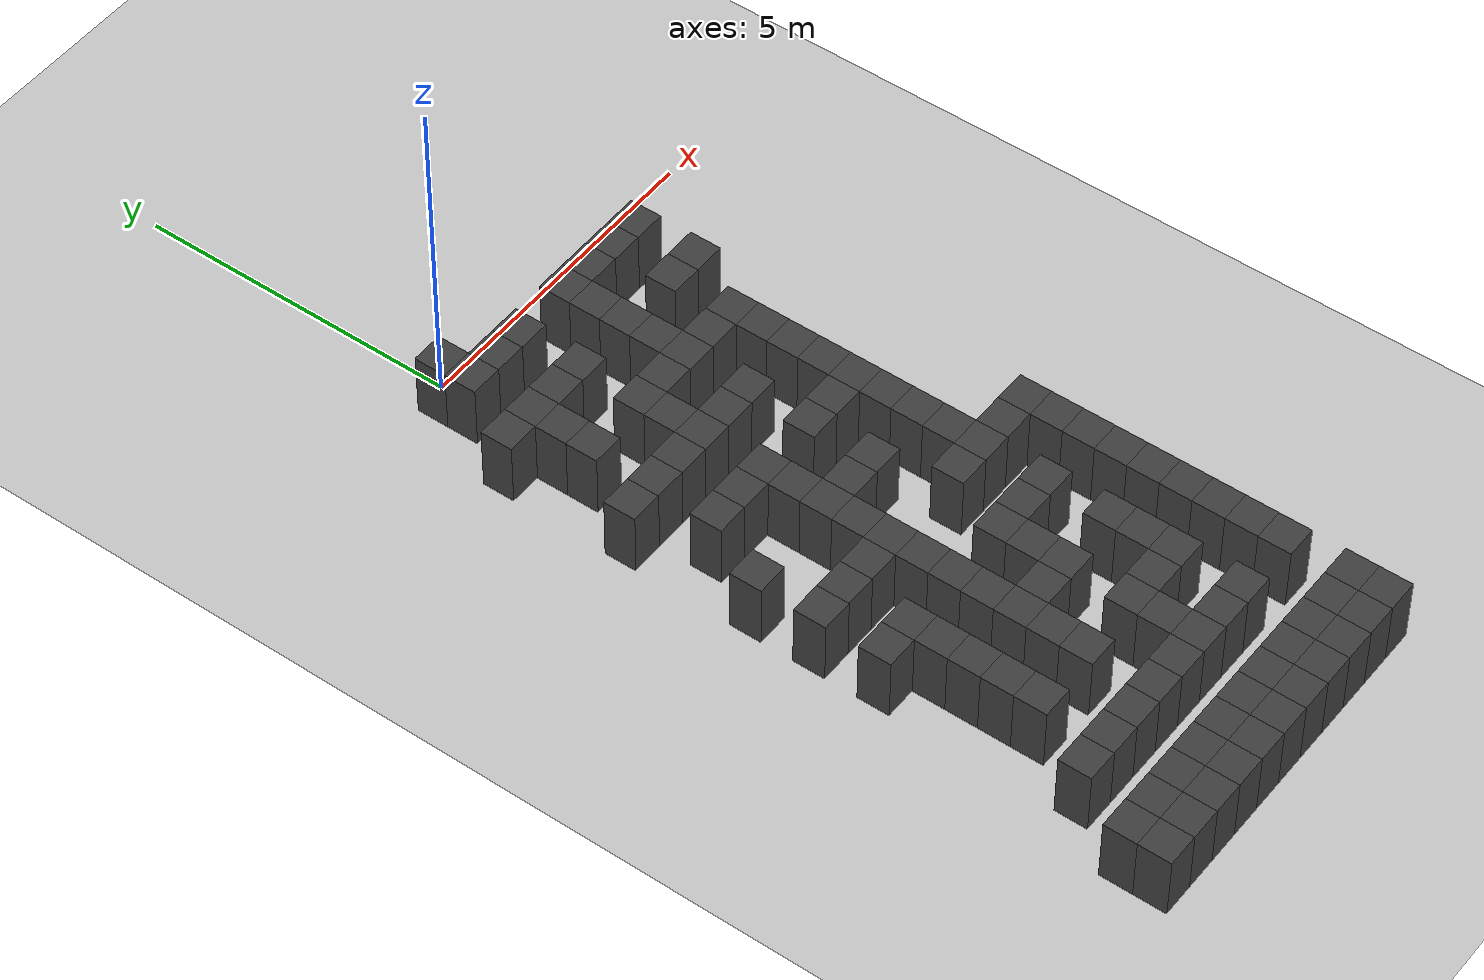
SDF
<sdf version="1.7">
 <world name="map_18914">
  <model name="ground_plane">
   <static>true</static>
   <link name="link">
    <collision name="collision">
     <geometry><plane><normal>0 0 1</normal><size>200 200</size></plane></geometry>
    </collision>
    <visual name="visual">
     <geometry><plane><normal>0 0 1</normal><size>200 200</size></plane></geometry>
     <material><ambient>0.8 0.8 0.8 1</ambient><diffuse>0.8 0.8 0.8 1</diffuse></material>
    </visual>
   </link>
  </model>
  <model name="maze_environment">
   <static>true</static>
   <link name="wall_658">
    <pose>-0.250 -0.250 0.500 0 0 0</pose>
    <collision name="col"><geometry><box><size>0.5 0.5 1.0</size></box></geometry></collision>
    <visual name="vis">
     <geometry><box><size>0.5 0.5 1.0</size></box></geometry>
     <material><ambient>0.15 0.15 0.15 1</ambient><diffuse>0.25 0.25 0.25 1</diffuse></material>
    </visual>
   </link>
   <link name="wall_683">
    <pose>-0.250 -0.750 0.500 0 0 0</pose>
    <collision name="col"><geometry><box><size>0.5 0.5 1.0</size></box></geometry></collision>
    <visual name="vis">
     <geometry><box><size>0.5 0.5 1.0</size></box></geometry>
     <material><ambient>0.15 0.15 0.15 1</ambient><diffuse>0.25 0.25 0.25 1</diffuse></material>
    </visual>
   </link>
   <link name="wall_684">
    <pose>0.250 -0.750 0.500 0 0 0</pose>
    <collision name="col"><geometry><box><size>0.5 0.5 1.0</size></box></geometry></collision>
    <visual name="vis">
     <geometry><box><size>0.5 0.5 1.0</size></box></geometry>
     <material><ambient>0.15 0.15 0.15 1</ambient><diffuse>0.25 0.25 0.25 1</diffuse></material>
    </visual>
   </link>
   <link name="wall_685">
    <pose>0.750 -0.750 0.500 0 0 0</pose>
    <collision name="col"><geometry><box><size>0.5 0.5 1.0</size></box></geometry></collision>
    <visual name="vis">
     <geometry><box><size>0.5 0.5 1.0</size></box></geometry>
     <material><ambient>0.15 0.15 0.15 1</ambient><diffuse>0.25 0.25 0.25 1</diffuse></material>
    </visual>
   </link>
   <link name="wall_686">
    <pose>1.750 -0.750 0.500 0 0 0</pose>
    <collision name="col"><geometry><box><size>0.5 0.5 1.0</size></box></geometry></collision>
    <visual name="vis">
     <geometry><box><size>0.5 0.5 1.0</size></box></geometry>
     <material><ambient>0.15 0.15 0.15 1</ambient><diffuse>0.25 0.25 0.25 1</diffuse></material>
    </visual>
   </link>
   <link name="wall_687">
    <pose>2.250 -0.750 0.500 0 0 0</pose>
    <collision name="col"><geometry><box><size>0.5 0.5 1.0</size></box></geometry></collision>
    <visual name="vis">
     <geometry><box><size>0.5 0.5 1.0</size></box></geometry>
     <material><ambient>0.15 0.15 0.15 1</ambient><diffuse>0.25 0.25 0.25 1</diffuse></material>
    </visual>
   </link>
   <link name="wall_688">
    <pose>2.750 -0.750 0.500 0 0 0</pose>
    <collision name="col"><geometry><box><size>0.5 0.5 1.0</size></box></geometry></collision>
    <visual name="vis">
     <geometry><box><size>0.5 0.5 1.0</size></box></geometry>
     <material><ambient>0.15 0.15 0.15 1</ambient><diffuse>0.25 0.25 0.25 1</diffuse></material>
    </visual>
   </link>
   <link name="wall_689">
    <pose>3.250 -0.750 0.500 0 0 0</pose>
    <collision name="col"><geometry><box><size>0.5 0.5 1.0</size></box></geometry></collision>
    <visual name="vis">
     <geometry><box><size>0.5 0.5 1.0</size></box></geometry>
     <material><ambient>0.15 0.15 0.15 1</ambient><diffuse>0.25 0.25 0.25 1</diffuse></material>
    </visual>
   </link>
   <link name="wall_709">
    <pose>1.750 -1.250 0.500 0 0 0</pose>
    <collision name="col"><geometry><box><size>0.5 0.5 1.0</size></box></geometry></collision>
    <visual name="vis">
     <geometry><box><size>0.5 0.5 1.0</size></box></geometry>
     <material><ambient>0.15 0.15 0.15 1</ambient><diffuse>0.25 0.25 0.25 1</diffuse></material>
    </visual>
   </link>
   <link name="wall_732">
    <pose>-0.750 -1.750 0.500 0 0 0</pose>
    <collision name="col"><geometry><box><size>0.5 0.5 1.0</size></box></geometry></collision>
    <visual name="vis">
     <geometry><box><size>0.5 0.5 1.0</size></box></geometry>
     <material><ambient>0.15 0.15 0.15 1</ambient><diffuse>0.25 0.25 0.25 1</diffuse></material>
    </visual>
   </link>
   <link name="wall_733">
    <pose>-0.250 -1.750 0.500 0 0 0</pose>
    <collision name="col"><geometry><box><size>0.5 0.5 1.0</size></box></geometry></collision>
    <visual name="vis">
     <geometry><box><size>0.5 0.5 1.0</size></box></geometry>
     <material><ambient>0.15 0.15 0.15 1</ambient><diffuse>0.25 0.25 0.25 1</diffuse></material>
    </visual>
   </link>
   <link name="wall_734">
    <pose>0.250 -1.750 0.500 0 0 0</pose>
    <collision name="col"><geometry><box><size>0.5 0.5 1.0</size></box></geometry></collision>
    <visual name="vis">
     <geometry><box><size>0.5 0.5 1.0</size></box></geometry>
     <material><ambient>0.15 0.15 0.15 1</ambient><diffuse>0.25 0.25 0.25 1</diffuse></material>
    </visual>
   </link>
   <link name="wall_735">
    <pose>0.750 -1.750 0.500 0 0 0</pose>
    <collision name="col"><geometry><box><size>0.5 0.5 1.0</size></box></geometry></collision>
    <visual name="vis">
     <geometry><box><size>0.5 0.5 1.0</size></box></geometry>
     <material><ambient>0.15 0.15 0.15 1</ambient><diffuse>0.25 0.25 0.25 1</diffuse></material>
    </visual>
   </link>
   <link name="wall_736">
    <pose>1.750 -1.750 0.500 0 0 0</pose>
    <collision name="col"><geometry><box><size>0.5 0.5 1.0</size></box></geometry></collision>
    <visual name="vis">
     <geometry><box><size>0.5 0.5 1.0</size></box></geometry>
     <material><ambient>0.15 0.15 0.15 1</ambient><diffuse>0.25 0.25 0.25 1</diffuse></material>
    </visual>
   </link>
   <link name="wall_737">
    <pose>2.750 -1.750 0.500 0 0 0</pose>
    <collision name="col"><geometry><box><size>0.5 0.5 1.0</size></box></geometry></collision>
    <visual name="vis">
     <geometry><box><size>0.5 0.5 1.0</size></box></geometry>
     <material><ambient>0.15 0.15 0.15 1</ambient><diffuse>0.25 0.25 0.25 1</diffuse></material>
    </visual>
   </link>
   <link name="wall_738">
    <pose>3.250 -1.750 0.500 0 0 0</pose>
    <collision name="col"><geometry><box><size>0.5 0.5 1.0</size></box></geometry></collision>
    <visual name="vis">
     <geometry><box><size>0.5 0.5 1.0</size></box></geometry>
     <material><ambient>0.15 0.15 0.15 1</ambient><diffuse>0.25 0.25 0.25 1</diffuse></material>
    </visual>
   </link>
   <link name="wall_760">
    <pose>-0.250 -2.250 0.500 0 0 0</pose>
    <collision name="col"><geometry><box><size>0.5 0.5 1.0</size></box></geometry></collision>
    <visual name="vis">
     <geometry><box><size>0.5 0.5 1.0</size></box></geometry>
     <material><ambient>0.15 0.15 0.15 1</ambient><diffuse>0.25 0.25 0.25 1</diffuse></material>
    </visual>
   </link>
   <link name="wall_761">
    <pose>1.750 -2.250 0.500 0 0 0</pose>
    <collision name="col"><geometry><box><size>0.5 0.5 1.0</size></box></geometry></collision>
    <visual name="vis">
     <geometry><box><size>0.5 0.5 1.0</size></box></geometry>
     <material><ambient>0.15 0.15 0.15 1</ambient><diffuse>0.25 0.25 0.25 1</diffuse></material>
    </visual>
   </link>
   <link name="wall_783">
    <pose>-0.250 -2.750 0.500 0 0 0</pose>
    <collision name="col"><geometry><box><size>0.5 0.5 1.0</size></box></geometry></collision>
    <visual name="vis">
     <geometry><box><size>0.5 0.5 1.0</size></box></geometry>
     <material><ambient>0.15 0.15 0.15 1</ambient><diffuse>0.25 0.25 0.25 1</diffuse></material>
    </visual>
   </link>
   <link name="wall_784">
    <pose>0.750 -2.750 0.500 0 0 0</pose>
    <collision name="col"><geometry><box><size>0.5 0.5 1.0</size></box></geometry></collision>
    <visual name="vis">
     <geometry><box><size>0.5 0.5 1.0</size></box></geometry>
     <material><ambient>0.15 0.15 0.15 1</ambient><diffuse>0.25 0.25 0.25 1</diffuse></material>
    </visual>
   </link>
   <link name="wall_785">
    <pose>1.250 -2.750 0.500 0 0 0</pose>
    <collision name="col"><geometry><box><size>0.5 0.5 1.0</size></box></geometry></collision>
    <visual name="vis">
     <geometry><box><size>0.5 0.5 1.0</size></box></geometry>
     <material><ambient>0.15 0.15 0.15 1</ambient><diffuse>0.25 0.25 0.25 1</diffuse></material>
    </visual>
   </link>
   <link name="wall_786">
    <pose>1.750 -2.750 0.500 0 0 0</pose>
    <collision name="col"><geometry><box><size>0.5 0.5 1.0</size></box></geometry></collision>
    <visual name="vis">
     <geometry><box><size>0.5 0.5 1.0</size></box></geometry>
     <material><ambient>0.15 0.15 0.15 1</ambient><diffuse>0.25 0.25 0.25 1</diffuse></material>
    </visual>
   </link>
   <link name="wall_787">
    <pose>2.250 -2.750 0.500 0 0 0</pose>
    <collision name="col"><geometry><box><size>0.5 0.5 1.0</size></box></geometry></collision>
    <visual name="vis">
     <geometry><box><size>0.5 0.5 1.0</size></box></geometry>
     <material><ambient>0.15 0.15 0.15 1</ambient><diffuse>0.25 0.25 0.25 1</diffuse></material>
    </visual>
   </link>
   <link name="wall_788">
    <pose>2.750 -2.750 0.500 0 0 0</pose>
    <collision name="col"><geometry><box><size>0.5 0.5 1.0</size></box></geometry></collision>
    <visual name="vis">
     <geometry><box><size>0.5 0.5 1.0</size></box></geometry>
     <material><ambient>0.15 0.15 0.15 1</ambient><diffuse>0.25 0.25 0.25 1</diffuse></material>
    </visual>
   </link>
   <link name="wall_812">
    <pose>0.750 -3.250 0.500 0 0 0</pose>
    <collision name="col"><geometry><box><size>0.5 0.5 1.0</size></box></geometry></collision>
    <visual name="vis">
     <geometry><box><size>0.5 0.5 1.0</size></box></geometry>
     <material><ambient>0.15 0.15 0.15 1</ambient><diffuse>0.25 0.25 0.25 1</diffuse></material>
    </visual>
   </link>
   <link name="wall_813">
    <pose>2.750 -3.250 0.500 0 0 0</pose>
    <collision name="col"><geometry><box><size>0.5 0.5 1.0</size></box></geometry></collision>
    <visual name="vis">
     <geometry><box><size>0.5 0.5 1.0</size></box></geometry>
     <material><ambient>0.15 0.15 0.15 1</ambient><diffuse>0.25 0.25 0.25 1</diffuse></material>
    </visual>
   </link>
   <link name="wall_834">
    <pose>-0.750 -3.750 0.500 0 0 0</pose>
    <collision name="col"><geometry><box><size>0.5 0.5 1.0</size></box></geometry></collision>
    <visual name="vis">
     <geometry><box><size>0.5 0.5 1.0</size></box></geometry>
     <material><ambient>0.15 0.15 0.15 1</ambient><diffuse>0.25 0.25 0.25 1</diffuse></material>
    </visual>
   </link>
   <link name="wall_835">
    <pose>-0.250 -3.750 0.500 0 0 0</pose>
    <collision name="col"><geometry><box><size>0.5 0.5 1.0</size></box></geometry></collision>
    <visual name="vis">
     <geometry><box><size>0.5 0.5 1.0</size></box></geometry>
     <material><ambient>0.15 0.15 0.15 1</ambient><diffuse>0.25 0.25 0.25 1</diffuse></material>
    </visual>
   </link>
   <link name="wall_836">
    <pose>0.250 -3.750 0.500 0 0 0</pose>
    <collision name="col"><geometry><box><size>0.5 0.5 1.0</size></box></geometry></collision>
    <visual name="vis">
     <geometry><box><size>0.5 0.5 1.0</size></box></geometry>
     <material><ambient>0.15 0.15 0.15 1</ambient><diffuse>0.25 0.25 0.25 1</diffuse></material>
    </visual>
   </link>
   <link name="wall_837">
    <pose>0.750 -3.750 0.500 0 0 0</pose>
    <collision name="col"><geometry><box><size>0.5 0.5 1.0</size></box></geometry></collision>
    <visual name="vis">
     <geometry><box><size>0.5 0.5 1.0</size></box></geometry>
     <material><ambient>0.15 0.15 0.15 1</ambient><diffuse>0.25 0.25 0.25 1</diffuse></material>
    </visual>
   </link>
   <link name="wall_838">
    <pose>1.250 -3.750 0.500 0 0 0</pose>
    <collision name="col"><geometry><box><size>0.5 0.5 1.0</size></box></geometry></collision>
    <visual name="vis">
     <geometry><box><size>0.5 0.5 1.0</size></box></geometry>
     <material><ambient>0.15 0.15 0.15 1</ambient><diffuse>0.25 0.25 0.25 1</diffuse></material>
    </visual>
   </link>
   <link name="wall_839">
    <pose>1.750 -3.750 0.500 0 0 0</pose>
    <collision name="col"><geometry><box><size>0.5 0.5 1.0</size></box></geometry></collision>
    <visual name="vis">
     <geometry><box><size>0.5 0.5 1.0</size></box></geometry>
     <material><ambient>0.15 0.15 0.15 1</ambient><diffuse>0.25 0.25 0.25 1</diffuse></material>
    </visual>
   </link>
   <link name="wall_840">
    <pose>2.750 -3.750 0.500 0 0 0</pose>
    <collision name="col"><geometry><box><size>0.5 0.5 1.0</size></box></geometry></collision>
    <visual name="vis">
     <geometry><box><size>0.5 0.5 1.0</size></box></geometry>
     <material><ambient>0.15 0.15 0.15 1</ambient><diffuse>0.25 0.25 0.25 1</diffuse></material>
    </visual>
   </link>
   <link name="wall_864">
    <pose>2.750 -4.250 0.500 0 0 0</pose>
    <collision name="col"><geometry><box><size>0.5 0.5 1.0</size></box></geometry></collision>
    <visual name="vis">
     <geometry><box><size>0.5 0.5 1.0</size></box></geometry>
     <material><ambient>0.15 0.15 0.15 1</ambient><diffuse>0.25 0.25 0.25 1</diffuse></material>
    </visual>
   </link>
   <link name="wall_884">
    <pose>-0.250 -4.750 0.500 0 0 0</pose>
    <collision name="col"><geometry><box><size>0.5 0.5 1.0</size></box></geometry></collision>
    <visual name="vis">
     <geometry><box><size>0.5 0.5 1.0</size></box></geometry>
     <material><ambient>0.15 0.15 0.15 1</ambient><diffuse>0.25 0.25 0.25 1</diffuse></material>
    </visual>
   </link>
   <link name="wall_885">
    <pose>0.250 -4.750 0.500 0 0 0</pose>
    <collision name="col"><geometry><box><size>0.5 0.5 1.0</size></box></geometry></collision>
    <visual name="vis">
     <geometry><box><size>0.5 0.5 1.0</size></box></geometry>
     <material><ambient>0.15 0.15 0.15 1</ambient><diffuse>0.25 0.25 0.25 1</diffuse></material>
    </visual>
   </link>
   <link name="wall_886">
    <pose>0.750 -4.750 0.500 0 0 0</pose>
    <collision name="col"><geometry><box><size>0.5 0.5 1.0</size></box></geometry></collision>
    <visual name="vis">
     <geometry><box><size>0.5 0.5 1.0</size></box></geometry>
     <material><ambient>0.15 0.15 0.15 1</ambient><diffuse>0.25 0.25 0.25 1</diffuse></material>
    </visual>
   </link>
   <link name="wall_887">
    <pose>1.750 -4.750 0.500 0 0 0</pose>
    <collision name="col"><geometry><box><size>0.5 0.5 1.0</size></box></geometry></collision>
    <visual name="vis">
     <geometry><box><size>0.5 0.5 1.0</size></box></geometry>
     <material><ambient>0.15 0.15 0.15 1</ambient><diffuse>0.25 0.25 0.25 1</diffuse></material>
    </visual>
   </link>
   <link name="wall_888">
    <pose>2.250 -4.750 0.500 0 0 0</pose>
    <collision name="col"><geometry><box><size>0.5 0.5 1.0</size></box></geometry></collision>
    <visual name="vis">
     <geometry><box><size>0.5 0.5 1.0</size></box></geometry>
     <material><ambient>0.15 0.15 0.15 1</ambient><diffuse>0.25 0.25 0.25 1</diffuse></material>
    </visual>
   </link>
   <link name="wall_889">
    <pose>2.750 -4.750 0.500 0 0 0</pose>
    <collision name="col"><geometry><box><size>0.5 0.5 1.0</size></box></geometry></collision>
    <visual name="vis">
     <geometry><box><size>0.5 0.5 1.0</size></box></geometry>
     <material><ambient>0.15 0.15 0.15 1</ambient><diffuse>0.25 0.25 0.25 1</diffuse></material>
    </visual>
   </link>
   <link name="wall_911">
    <pose>0.750 -5.250 0.500 0 0 0</pose>
    <collision name="col"><geometry><box><size>0.5 0.5 1.0</size></box></geometry></collision>
    <visual name="vis">
     <geometry><box><size>0.5 0.5 1.0</size></box></geometry>
     <material><ambient>0.15 0.15 0.15 1</ambient><diffuse>0.25 0.25 0.25 1</diffuse></material>
    </visual>
   </link>
   <link name="wall_912">
    <pose>2.750 -5.250 0.500 0 0 0</pose>
    <collision name="col"><geometry><box><size>0.5 0.5 1.0</size></box></geometry></collision>
    <visual name="vis">
     <geometry><box><size>0.5 0.5 1.0</size></box></geometry>
     <material><ambient>0.15 0.15 0.15 1</ambient><diffuse>0.25 0.25 0.25 1</diffuse></material>
    </visual>
   </link>
   <link name="wall_934">
    <pose>-0.750 -5.750 0.500 0 0 0</pose>
    <collision name="col"><geometry><box><size>0.5 0.5 1.0</size></box></geometry></collision>
    <visual name="vis">
     <geometry><box><size>0.5 0.5 1.0</size></box></geometry>
     <material><ambient>0.15 0.15 0.15 1</ambient><diffuse>0.25 0.25 0.25 1</diffuse></material>
    </visual>
   </link>
   <link name="wall_935">
    <pose>0.750 -5.750 0.500 0 0 0</pose>
    <collision name="col"><geometry><box><size>0.5 0.5 1.0</size></box></geometry></collision>
    <visual name="vis">
     <geometry><box><size>0.5 0.5 1.0</size></box></geometry>
     <material><ambient>0.15 0.15 0.15 1</ambient><diffuse>0.25 0.25 0.25 1</diffuse></material>
    </visual>
   </link>
   <link name="wall_936">
    <pose>1.250 -5.750 0.500 0 0 0</pose>
    <collision name="col"><geometry><box><size>0.5 0.5 1.0</size></box></geometry></collision>
    <visual name="vis">
     <geometry><box><size>0.5 0.5 1.0</size></box></geometry>
     <material><ambient>0.15 0.15 0.15 1</ambient><diffuse>0.25 0.25 0.25 1</diffuse></material>
    </visual>
   </link>
   <link name="wall_937">
    <pose>1.750 -5.750 0.500 0 0 0</pose>
    <collision name="col"><geometry><box><size>0.5 0.5 1.0</size></box></geometry></collision>
    <visual name="vis">
     <geometry><box><size>0.5 0.5 1.0</size></box></geometry>
     <material><ambient>0.15 0.15 0.15 1</ambient><diffuse>0.25 0.25 0.25 1</diffuse></material>
    </visual>
   </link>
   <link name="wall_938">
    <pose>2.750 -5.750 0.500 0 0 0</pose>
    <collision name="col"><geometry><box><size>0.5 0.5 1.0</size></box></geometry></collision>
    <visual name="vis">
     <geometry><box><size>0.5 0.5 1.0</size></box></geometry>
     <material><ambient>0.15 0.15 0.15 1</ambient><diffuse>0.25 0.25 0.25 1</diffuse></material>
    </visual>
   </link>
   <link name="wall_958">
    <pose>0.750 -6.250 0.500 0 0 0</pose>
    <collision name="col"><geometry><box><size>0.5 0.5 1.0</size></box></geometry></collision>
    <visual name="vis">
     <geometry><box><size>0.5 0.5 1.0</size></box></geometry>
     <material><ambient>0.15 0.15 0.15 1</ambient><diffuse>0.25 0.25 0.25 1</diffuse></material>
    </visual>
   </link>
   <link name="wall_959">
    <pose>2.750 -6.250 0.500 0 0 0</pose>
    <collision name="col"><geometry><box><size>0.5 0.5 1.0</size></box></geometry></collision>
    <visual name="vis">
     <geometry><box><size>0.5 0.5 1.0</size></box></geometry>
     <material><ambient>0.15 0.15 0.15 1</ambient><diffuse>0.25 0.25 0.25 1</diffuse></material>
    </visual>
   </link>
   <link name="wall_982">
    <pose>-0.750 -6.750 0.500 0 0 0</pose>
    <collision name="col"><geometry><box><size>0.5 0.5 1.0</size></box></geometry></collision>
    <visual name="vis">
     <geometry><box><size>0.5 0.5 1.0</size></box></geometry>
     <material><ambient>0.15 0.15 0.15 1</ambient><diffuse>0.25 0.25 0.25 1</diffuse></material>
    </visual>
   </link>
   <link name="wall_983">
    <pose>-0.250 -6.750 0.500 0 0 0</pose>
    <collision name="col"><geometry><box><size>0.5 0.5 1.0</size></box></geometry></collision>
    <visual name="vis">
     <geometry><box><size>0.5 0.5 1.0</size></box></geometry>
     <material><ambient>0.15 0.15 0.15 1</ambient><diffuse>0.25 0.25 0.25 1</diffuse></material>
    </visual>
   </link>
   <link name="wall_984">
    <pose>0.250 -6.750 0.500 0 0 0</pose>
    <collision name="col"><geometry><box><size>0.5 0.5 1.0</size></box></geometry></collision>
    <visual name="vis">
     <geometry><box><size>0.5 0.5 1.0</size></box></geometry>
     <material><ambient>0.15 0.15 0.15 1</ambient><diffuse>0.25 0.25 0.25 1</diffuse></material>
    </visual>
   </link>
   <link name="wall_985">
    <pose>0.750 -6.750 0.500 0 0 0</pose>
    <collision name="col"><geometry><box><size>0.5 0.5 1.0</size></box></geometry></collision>
    <visual name="vis">
     <geometry><box><size>0.5 0.5 1.0</size></box></geometry>
     <material><ambient>0.15 0.15 0.15 1</ambient><diffuse>0.25 0.25 0.25 1</diffuse></material>
    </visual>
   </link>
   <link name="wall_986">
    <pose>2.250 -6.750 0.500 0 0 0</pose>
    <collision name="col"><geometry><box><size>0.5 0.5 1.0</size></box></geometry></collision>
    <visual name="vis">
     <geometry><box><size>0.5 0.5 1.0</size></box></geometry>
     <material><ambient>0.15 0.15 0.15 1</ambient><diffuse>0.25 0.25 0.25 1</diffuse></material>
    </visual>
   </link>
   <link name="wall_987">
    <pose>2.750 -6.750 0.500 0 0 0</pose>
    <collision name="col"><geometry><box><size>0.5 0.5 1.0</size></box></geometry></collision>
    <visual name="vis">
     <geometry><box><size>0.5 0.5 1.0</size></box></geometry>
     <material><ambient>0.15 0.15 0.15 1</ambient><diffuse>0.25 0.25 0.25 1</diffuse></material>
    </visual>
   </link>
   <link name="wall_988">
    <pose>3.250 -6.750 0.500 0 0 0</pose>
    <collision name="col"><geometry><box><size>0.5 0.5 1.0</size></box></geometry></collision>
    <visual name="vis">
     <geometry><box><size>0.5 0.5 1.0</size></box></geometry>
     <material><ambient>0.15 0.15 0.15 1</ambient><diffuse>0.25 0.25 0.25 1</diffuse></material>
    </visual>
   </link>
   <link name="wall_989">
    <pose>3.750 -6.750 0.500 0 0 0</pose>
    <collision name="col"><geometry><box><size>0.5 0.5 1.0</size></box></geometry></collision>
    <visual name="vis">
     <geometry><box><size>0.5 0.5 1.0</size></box></geometry>
     <material><ambient>0.15 0.15 0.15 1</ambient><diffuse>0.25 0.25 0.25 1</diffuse></material>
    </visual>
   </link>
   <link name="wall_1008">
    <pose>0.750 -7.250 0.500 0 0 0</pose>
    <collision name="col"><geometry><box><size>0.5 0.5 1.0</size></box></geometry></collision>
    <visual name="vis">
     <geometry><box><size>0.5 0.5 1.0</size></box></geometry>
     <material><ambient>0.15 0.15 0.15 1</ambient><diffuse>0.25 0.25 0.25 1</diffuse></material>
    </visual>
   </link>
   <link name="wall_1009">
    <pose>3.750 -7.250 0.500 0 0 0</pose>
    <collision name="col"><geometry><box><size>0.5 0.5 1.0</size></box></geometry></collision>
    <visual name="vis">
     <geometry><box><size>0.5 0.5 1.0</size></box></geometry>
     <material><ambient>0.15 0.15 0.15 1</ambient><diffuse>0.25 0.25 0.25 1</diffuse></material>
    </visual>
   </link>
   <link name="wall_1032">
    <pose>-0.750 -7.750 0.500 0 0 0</pose>
    <collision name="col"><geometry><box><size>0.5 0.5 1.0</size></box></geometry></collision>
    <visual name="vis">
     <geometry><box><size>0.5 0.5 1.0</size></box></geometry>
     <material><ambient>0.15 0.15 0.15 1</ambient><diffuse>0.25 0.25 0.25 1</diffuse></material>
    </visual>
   </link>
   <link name="wall_1033">
    <pose>-0.250 -7.750 0.500 0 0 0</pose>
    <collision name="col"><geometry><box><size>0.5 0.5 1.0</size></box></geometry></collision>
    <visual name="vis">
     <geometry><box><size>0.5 0.5 1.0</size></box></geometry>
     <material><ambient>0.15 0.15 0.15 1</ambient><diffuse>0.25 0.25 0.25 1</diffuse></material>
    </visual>
   </link>
   <link name="wall_1034">
    <pose>0.750 -7.750 0.500 0 0 0</pose>
    <collision name="col"><geometry><box><size>0.5 0.5 1.0</size></box></geometry></collision>
    <visual name="vis">
     <geometry><box><size>0.5 0.5 1.0</size></box></geometry>
     <material><ambient>0.15 0.15 0.15 1</ambient><diffuse>0.25 0.25 0.25 1</diffuse></material>
    </visual>
   </link>
   <link name="wall_1035">
    <pose>1.750 -7.750 0.500 0 0 0</pose>
    <collision name="col"><geometry><box><size>0.5 0.5 1.0</size></box></geometry></collision>
    <visual name="vis">
     <geometry><box><size>0.5 0.5 1.0</size></box></geometry>
     <material><ambient>0.15 0.15 0.15 1</ambient><diffuse>0.25 0.25 0.25 1</diffuse></material>
    </visual>
   </link>
   <link name="wall_1036">
    <pose>2.250 -7.750 0.500 0 0 0</pose>
    <collision name="col"><geometry><box><size>0.5 0.5 1.0</size></box></geometry></collision>
    <visual name="vis">
     <geometry><box><size>0.5 0.5 1.0</size></box></geometry>
     <material><ambient>0.15 0.15 0.15 1</ambient><diffuse>0.25 0.25 0.25 1</diffuse></material>
    </visual>
   </link>
   <link name="wall_1037">
    <pose>2.750 -7.750 0.500 0 0 0</pose>
    <collision name="col"><geometry><box><size>0.5 0.5 1.0</size></box></geometry></collision>
    <visual name="vis">
     <geometry><box><size>0.5 0.5 1.0</size></box></geometry>
     <material><ambient>0.15 0.15 0.15 1</ambient><diffuse>0.25 0.25 0.25 1</diffuse></material>
    </visual>
   </link>
   <link name="wall_1038">
    <pose>3.750 -7.750 0.500 0 0 0</pose>
    <collision name="col"><geometry><box><size>0.5 0.5 1.0</size></box></geometry></collision>
    <visual name="vis">
     <geometry><box><size>0.5 0.5 1.0</size></box></geometry>
     <material><ambient>0.15 0.15 0.15 1</ambient><diffuse>0.25 0.25 0.25 1</diffuse></material>
    </visual>
   </link>
   <link name="wall_1058">
    <pose>-0.250 -8.250 0.500 0 0 0</pose>
    <collision name="col"><geometry><box><size>0.5 0.5 1.0</size></box></geometry></collision>
    <visual name="vis">
     <geometry><box><size>0.5 0.5 1.0</size></box></geometry>
     <material><ambient>0.15 0.15 0.15 1</ambient><diffuse>0.25 0.25 0.25 1</diffuse></material>
    </visual>
   </link>
   <link name="wall_1059">
    <pose>0.750 -8.250 0.500 0 0 0</pose>
    <collision name="col"><geometry><box><size>0.5 0.5 1.0</size></box></geometry></collision>
    <visual name="vis">
     <geometry><box><size>0.5 0.5 1.0</size></box></geometry>
     <material><ambient>0.15 0.15 0.15 1</ambient><diffuse>0.25 0.25 0.25 1</diffuse></material>
    </visual>
   </link>
   <link name="wall_1060">
    <pose>1.750 -8.250 0.500 0 0 0</pose>
    <collision name="col"><geometry><box><size>0.5 0.5 1.0</size></box></geometry></collision>
    <visual name="vis">
     <geometry><box><size>0.5 0.5 1.0</size></box></geometry>
     <material><ambient>0.15 0.15 0.15 1</ambient><diffuse>0.25 0.25 0.25 1</diffuse></material>
    </visual>
   </link>
   <link name="wall_1061">
    <pose>3.750 -8.250 0.500 0 0 0</pose>
    <collision name="col"><geometry><box><size>0.5 0.5 1.0</size></box></geometry></collision>
    <visual name="vis">
     <geometry><box><size>0.5 0.5 1.0</size></box></geometry>
     <material><ambient>0.15 0.15 0.15 1</ambient><diffuse>0.25 0.25 0.25 1</diffuse></material>
    </visual>
   </link>
   <link name="wall_1084">
    <pose>-0.250 -8.750 0.500 0 0 0</pose>
    <collision name="col"><geometry><box><size>0.5 0.5 1.0</size></box></geometry></collision>
    <visual name="vis">
     <geometry><box><size>0.5 0.5 1.0</size></box></geometry>
     <material><ambient>0.15 0.15 0.15 1</ambient><diffuse>0.25 0.25 0.25 1</diffuse></material>
    </visual>
   </link>
   <link name="wall_1085">
    <pose>0.750 -8.750 0.500 0 0 0</pose>
    <collision name="col"><geometry><box><size>0.5 0.5 1.0</size></box></geometry></collision>
    <visual name="vis">
     <geometry><box><size>0.5 0.5 1.0</size></box></geometry>
     <material><ambient>0.15 0.15 0.15 1</ambient><diffuse>0.25 0.25 0.25 1</diffuse></material>
    </visual>
   </link>
   <link name="wall_1086">
    <pose>1.250 -8.750 0.500 0 0 0</pose>
    <collision name="col"><geometry><box><size>0.5 0.5 1.0</size></box></geometry></collision>
    <visual name="vis">
     <geometry><box><size>0.5 0.5 1.0</size></box></geometry>
     <material><ambient>0.15 0.15 0.15 1</ambient><diffuse>0.25 0.25 0.25 1</diffuse></material>
    </visual>
   </link>
   <link name="wall_1087">
    <pose>1.750 -8.750 0.500 0 0 0</pose>
    <collision name="col"><geometry><box><size>0.5 0.5 1.0</size></box></geometry></collision>
    <visual name="vis">
     <geometry><box><size>0.5 0.5 1.0</size></box></geometry>
     <material><ambient>0.15 0.15 0.15 1</ambient><diffuse>0.25 0.25 0.25 1</diffuse></material>
    </visual>
   </link>
   <link name="wall_1088">
    <pose>2.750 -8.750 0.500 0 0 0</pose>
    <collision name="col"><geometry><box><size>0.5 0.5 1.0</size></box></geometry></collision>
    <visual name="vis">
     <geometry><box><size>0.5 0.5 1.0</size></box></geometry>
     <material><ambient>0.15 0.15 0.15 1</ambient><diffuse>0.25 0.25 0.25 1</diffuse></material>
    </visual>
   </link>
   <link name="wall_1089">
    <pose>3.750 -8.750 0.500 0 0 0</pose>
    <collision name="col"><geometry><box><size>0.5 0.5 1.0</size></box></geometry></collision>
    <visual name="vis">
     <geometry><box><size>0.5 0.5 1.0</size></box></geometry>
     <material><ambient>0.15 0.15 0.15 1</ambient><diffuse>0.25 0.25 0.25 1</diffuse></material>
    </visual>
   </link>
   <link name="wall_1109">
    <pose>-0.250 -9.250 0.500 0 0 0</pose>
    <collision name="col"><geometry><box><size>0.5 0.5 1.0</size></box></geometry></collision>
    <visual name="vis">
     <geometry><box><size>0.5 0.5 1.0</size></box></geometry>
     <material><ambient>0.15 0.15 0.15 1</ambient><diffuse>0.25 0.25 0.25 1</diffuse></material>
    </visual>
   </link>
   <link name="wall_1110">
    <pose>0.750 -9.250 0.500 0 0 0</pose>
    <collision name="col"><geometry><box><size>0.5 0.5 1.0</size></box></geometry></collision>
    <visual name="vis">
     <geometry><box><size>0.5 0.5 1.0</size></box></geometry>
     <material><ambient>0.15 0.15 0.15 1</ambient><diffuse>0.25 0.25 0.25 1</diffuse></material>
    </visual>
   </link>
   <link name="wall_1111">
    <pose>2.750 -9.250 0.500 0 0 0</pose>
    <collision name="col"><geometry><box><size>0.5 0.5 1.0</size></box></geometry></collision>
    <visual name="vis">
     <geometry><box><size>0.5 0.5 1.0</size></box></geometry>
     <material><ambient>0.15 0.15 0.15 1</ambient><diffuse>0.25 0.25 0.25 1</diffuse></material>
    </visual>
   </link>
   <link name="wall_1112">
    <pose>3.750 -9.250 0.500 0 0 0</pose>
    <collision name="col"><geometry><box><size>0.5 0.5 1.0</size></box></geometry></collision>
    <visual name="vis">
     <geometry><box><size>0.5 0.5 1.0</size></box></geometry>
     <material><ambient>0.15 0.15 0.15 1</ambient><diffuse>0.25 0.25 0.25 1</diffuse></material>
    </visual>
   </link>
   <link name="wall_1134">
    <pose>-0.250 -9.750 0.500 0 0 0</pose>
    <collision name="col"><geometry><box><size>0.5 0.5 1.0</size></box></geometry></collision>
    <visual name="vis">
     <geometry><box><size>0.5 0.5 1.0</size></box></geometry>
     <material><ambient>0.15 0.15 0.15 1</ambient><diffuse>0.25 0.25 0.25 1</diffuse></material>
    </visual>
   </link>
   <link name="wall_1135">
    <pose>0.750 -9.750 0.500 0 0 0</pose>
    <collision name="col"><geometry><box><size>0.5 0.5 1.0</size></box></geometry></collision>
    <visual name="vis">
     <geometry><box><size>0.5 0.5 1.0</size></box></geometry>
     <material><ambient>0.15 0.15 0.15 1</ambient><diffuse>0.25 0.25 0.25 1</diffuse></material>
    </visual>
   </link>
   <link name="wall_1136">
    <pose>1.750 -9.750 0.500 0 0 0</pose>
    <collision name="col"><geometry><box><size>0.5 0.5 1.0</size></box></geometry></collision>
    <visual name="vis">
     <geometry><box><size>0.5 0.5 1.0</size></box></geometry>
     <material><ambient>0.15 0.15 0.15 1</ambient><diffuse>0.25 0.25 0.25 1</diffuse></material>
    </visual>
   </link>
   <link name="wall_1137">
    <pose>2.250 -9.750 0.500 0 0 0</pose>
    <collision name="col"><geometry><box><size>0.5 0.5 1.0</size></box></geometry></collision>
    <visual name="vis">
     <geometry><box><size>0.5 0.5 1.0</size></box></geometry>
     <material><ambient>0.15 0.15 0.15 1</ambient><diffuse>0.25 0.25 0.25 1</diffuse></material>
    </visual>
   </link>
   <link name="wall_1138">
    <pose>2.750 -9.750 0.500 0 0 0</pose>
    <collision name="col"><geometry><box><size>0.5 0.5 1.0</size></box></geometry></collision>
    <visual name="vis">
     <geometry><box><size>0.5 0.5 1.0</size></box></geometry>
     <material><ambient>0.15 0.15 0.15 1</ambient><diffuse>0.25 0.25 0.25 1</diffuse></material>
    </visual>
   </link>
   <link name="wall_1139">
    <pose>3.750 -9.750 0.500 0 0 0</pose>
    <collision name="col"><geometry><box><size>0.5 0.5 1.0</size></box></geometry></collision>
    <visual name="vis">
     <geometry><box><size>0.5 0.5 1.0</size></box></geometry>
     <material><ambient>0.15 0.15 0.15 1</ambient><diffuse>0.25 0.25 0.25 1</diffuse></material>
    </visual>
   </link>
   <link name="wall_1161">
    <pose>1.750 -10.250 0.500 0 0 0</pose>
    <collision name="col"><geometry><box><size>0.5 0.5 1.0</size></box></geometry></collision>
    <visual name="vis">
     <geometry><box><size>0.5 0.5 1.0</size></box></geometry>
     <material><ambient>0.15 0.15 0.15 1</ambient><diffuse>0.25 0.25 0.25 1</diffuse></material>
    </visual>
   </link>
   <link name="wall_1162">
    <pose>3.750 -10.250 0.500 0 0 0</pose>
    <collision name="col"><geometry><box><size>0.5 0.5 1.0</size></box></geometry></collision>
    <visual name="vis">
     <geometry><box><size>0.5 0.5 1.0</size></box></geometry>
     <material><ambient>0.15 0.15 0.15 1</ambient><diffuse>0.25 0.25 0.25 1</diffuse></material>
    </visual>
   </link>
   <link name="wall_1184">
    <pose>-0.750 -10.750 0.500 0 0 0</pose>
    <collision name="col"><geometry><box><size>0.5 0.5 1.0</size></box></geometry></collision>
    <visual name="vis">
     <geometry><box><size>0.5 0.5 1.0</size></box></geometry>
     <material><ambient>0.15 0.15 0.15 1</ambient><diffuse>0.25 0.25 0.25 1</diffuse></material>
    </visual>
   </link>
   <link name="wall_1185">
    <pose>-0.250 -10.750 0.500 0 0 0</pose>
    <collision name="col"><geometry><box><size>0.5 0.5 1.0</size></box></geometry></collision>
    <visual name="vis">
     <geometry><box><size>0.5 0.5 1.0</size></box></geometry>
     <material><ambient>0.15 0.15 0.15 1</ambient><diffuse>0.25 0.25 0.25 1</diffuse></material>
    </visual>
   </link>
   <link name="wall_1186">
    <pose>0.250 -10.750 0.500 0 0 0</pose>
    <collision name="col"><geometry><box><size>0.5 0.5 1.0</size></box></geometry></collision>
    <visual name="vis">
     <geometry><box><size>0.5 0.5 1.0</size></box></geometry>
     <material><ambient>0.15 0.15 0.15 1</ambient><diffuse>0.25 0.25 0.25 1</diffuse></material>
    </visual>
   </link>
   <link name="wall_1187">
    <pose>0.750 -10.750 0.500 0 0 0</pose>
    <collision name="col"><geometry><box><size>0.5 0.5 1.0</size></box></geometry></collision>
    <visual name="vis">
     <geometry><box><size>0.5 0.5 1.0</size></box></geometry>
     <material><ambient>0.15 0.15 0.15 1</ambient><diffuse>0.25 0.25 0.25 1</diffuse></material>
    </visual>
   </link>
   <link name="wall_1188">
    <pose>1.250 -10.750 0.500 0 0 0</pose>
    <collision name="col"><geometry><box><size>0.5 0.5 1.0</size></box></geometry></collision>
    <visual name="vis">
     <geometry><box><size>0.5 0.5 1.0</size></box></geometry>
     <material><ambient>0.15 0.15 0.15 1</ambient><diffuse>0.25 0.25 0.25 1</diffuse></material>
    </visual>
   </link>
   <link name="wall_1189">
    <pose>1.750 -10.750 0.500 0 0 0</pose>
    <collision name="col"><geometry><box><size>0.5 0.5 1.0</size></box></geometry></collision>
    <visual name="vis">
     <geometry><box><size>0.5 0.5 1.0</size></box></geometry>
     <material><ambient>0.15 0.15 0.15 1</ambient><diffuse>0.25 0.25 0.25 1</diffuse></material>
    </visual>
   </link>
   <link name="wall_1190">
    <pose>2.250 -10.750 0.500 0 0 0</pose>
    <collision name="col"><geometry><box><size>0.5 0.5 1.0</size></box></geometry></collision>
    <visual name="vis">
     <geometry><box><size>0.5 0.5 1.0</size></box></geometry>
     <material><ambient>0.15 0.15 0.15 1</ambient><diffuse>0.25 0.25 0.25 1</diffuse></material>
    </visual>
   </link>
   <link name="wall_1191">
    <pose>2.750 -10.750 0.500 0 0 0</pose>
    <collision name="col"><geometry><box><size>0.5 0.5 1.0</size></box></geometry></collision>
    <visual name="vis">
     <geometry><box><size>0.5 0.5 1.0</size></box></geometry>
     <material><ambient>0.15 0.15 0.15 1</ambient><diffuse>0.25 0.25 0.25 1</diffuse></material>
    </visual>
   </link>
   <link name="wall_1192">
    <pose>3.750 -10.750 0.500 0 0 0</pose>
    <collision name="col"><geometry><box><size>0.5 0.5 1.0</size></box></geometry></collision>
    <visual name="vis">
     <geometry><box><size>0.5 0.5 1.0</size></box></geometry>
     <material><ambient>0.15 0.15 0.15 1</ambient><diffuse>0.25 0.25 0.25 1</diffuse></material>
    </visual>
   </link>
   <link name="wall_1235">
    <pose>-1.250 -11.750 0.500 0 0 0</pose>
    <collision name="col"><geometry><box><size>0.5 0.5 1.0</size></box></geometry></collision>
    <visual name="vis">
     <geometry><box><size>0.5 0.5 1.0</size></box></geometry>
     <material><ambient>0.15 0.15 0.15 1</ambient><diffuse>0.25 0.25 0.25 1</diffuse></material>
    </visual>
   </link>
   <link name="wall_1236">
    <pose>-0.750 -11.750 0.500 0 0 0</pose>
    <collision name="col"><geometry><box><size>0.5 0.5 1.0</size></box></geometry></collision>
    <visual name="vis">
     <geometry><box><size>0.5 0.5 1.0</size></box></geometry>
     <material><ambient>0.15 0.15 0.15 1</ambient><diffuse>0.25 0.25 0.25 1</diffuse></material>
    </visual>
   </link>
   <link name="wall_1237">
    <pose>-0.250 -11.750 0.500 0 0 0</pose>
    <collision name="col"><geometry><box><size>0.5 0.5 1.0</size></box></geometry></collision>
    <visual name="vis">
     <geometry><box><size>0.5 0.5 1.0</size></box></geometry>
     <material><ambient>0.15 0.15 0.15 1</ambient><diffuse>0.25 0.25 0.25 1</diffuse></material>
    </visual>
   </link>
   <link name="wall_1238">
    <pose>0.250 -11.750 0.500 0 0 0</pose>
    <collision name="col"><geometry><box><size>0.5 0.5 1.0</size></box></geometry></collision>
    <visual name="vis">
     <geometry><box><size>0.5 0.5 1.0</size></box></geometry>
     <material><ambient>0.15 0.15 0.15 1</ambient><diffuse>0.25 0.25 0.25 1</diffuse></material>
    </visual>
   </link>
   <link name="wall_1239">
    <pose>0.750 -11.750 0.500 0 0 0</pose>
    <collision name="col"><geometry><box><size>0.5 0.5 1.0</size></box></geometry></collision>
    <visual name="vis">
     <geometry><box><size>0.5 0.5 1.0</size></box></geometry>
     <material><ambient>0.15 0.15 0.15 1</ambient><diffuse>0.25 0.25 0.25 1</diffuse></material>
    </visual>
   </link>
   <link name="wall_1240">
    <pose>1.250 -11.750 0.500 0 0 0</pose>
    <collision name="col"><geometry><box><size>0.5 0.5 1.0</size></box></geometry></collision>
    <visual name="vis">
     <geometry><box><size>0.5 0.5 1.0</size></box></geometry>
     <material><ambient>0.15 0.15 0.15 1</ambient><diffuse>0.25 0.25 0.25 1</diffuse></material>
    </visual>
   </link>
   <link name="wall_1241">
    <pose>1.750 -11.750 0.500 0 0 0</pose>
    <collision name="col"><geometry><box><size>0.5 0.5 1.0</size></box></geometry></collision>
    <visual name="vis">
     <geometry><box><size>0.5 0.5 1.0</size></box></geometry>
     <material><ambient>0.15 0.15 0.15 1</ambient><diffuse>0.25 0.25 0.25 1</diffuse></material>
    </visual>
   </link>
   <link name="wall_1242">
    <pose>2.250 -11.750 0.500 0 0 0</pose>
    <collision name="col"><geometry><box><size>0.5 0.5 1.0</size></box></geometry></collision>
    <visual name="vis">
     <geometry><box><size>0.5 0.5 1.0</size></box></geometry>
     <material><ambient>0.15 0.15 0.15 1</ambient><diffuse>0.25 0.25 0.25 1</diffuse></material>
    </visual>
   </link>
   <link name="wall_1243">
    <pose>2.750 -11.750 0.500 0 0 0</pose>
    <collision name="col"><geometry><box><size>0.5 0.5 1.0</size></box></geometry></collision>
    <visual name="vis">
     <geometry><box><size>0.5 0.5 1.0</size></box></geometry>
     <material><ambient>0.15 0.15 0.15 1</ambient><diffuse>0.25 0.25 0.25 1</diffuse></material>
    </visual>
   </link>
   <link name="wall_1244">
    <pose>3.250 -11.750 0.500 0 0 0</pose>
    <collision name="col"><geometry><box><size>0.5 0.5 1.0</size></box></geometry></collision>
    <visual name="vis">
     <geometry><box><size>0.5 0.5 1.0</size></box></geometry>
     <material><ambient>0.15 0.15 0.15 1</ambient><diffuse>0.25 0.25 0.25 1</diffuse></material>
    </visual>
   </link>
   <link name="wall_1245">
    <pose>3.750 -11.750 0.500 0 0 0</pose>
    <collision name="col"><geometry><box><size>0.5 0.5 1.0</size></box></geometry></collision>
    <visual name="vis">
     <geometry><box><size>0.5 0.5 1.0</size></box></geometry>
     <material><ambient>0.15 0.15 0.15 1</ambient><diffuse>0.25 0.25 0.25 1</diffuse></material>
    </visual>
   </link>
   <link name="wall_1283">
    <pose>-1.250 -12.250 0.500 0 0 0</pose>
    <collision name="col"><geometry><box><size>0.5 0.5 1.0</size></box></geometry></collision>
    <visual name="vis">
     <geometry><box><size>0.5 0.5 1.0</size></box></geometry>
     <material><ambient>0.15 0.15 0.15 1</ambient><diffuse>0.25 0.25 0.25 1</diffuse></material>
    </visual>
   </link>
   <link name="wall_1284">
    <pose>-0.750 -12.250 0.500 0 0 0</pose>
    <collision name="col"><geometry><box><size>0.5 0.5 1.0</size></box></geometry></collision>
    <visual name="vis">
     <geometry><box><size>0.5 0.5 1.0</size></box></geometry>
     <material><ambient>0.15 0.15 0.15 1</ambient><diffuse>0.25 0.25 0.25 1</diffuse></material>
    </visual>
   </link>
   <link name="wall_1285">
    <pose>-0.250 -12.250 0.500 0 0 0</pose>
    <collision name="col"><geometry><box><size>0.5 0.5 1.0</size></box></geometry></collision>
    <visual name="vis">
     <geometry><box><size>0.5 0.5 1.0</size></box></geometry>
     <material><ambient>0.15 0.15 0.15 1</ambient><diffuse>0.25 0.25 0.25 1</diffuse></material>
    </visual>
   </link>
   <link name="wall_1286">
    <pose>0.250 -12.250 0.500 0 0 0</pose>
    <collision name="col"><geometry><box><size>0.5 0.5 1.0</size></box></geometry></collision>
    <visual name="vis">
     <geometry><box><size>0.5 0.5 1.0</size></box></geometry>
     <material><ambient>0.15 0.15 0.15 1</ambient><diffuse>0.25 0.25 0.25 1</diffuse></material>
    </visual>
   </link>
   <link name="wall_1287">
    <pose>0.750 -12.250 0.500 0 0 0</pose>
    <collision name="col"><geometry><box><size>0.5 0.5 1.0</size></box></geometry></collision>
    <visual name="vis">
     <geometry><box><size>0.5 0.5 1.0</size></box></geometry>
     <material><ambient>0.15 0.15 0.15 1</ambient><diffuse>0.25 0.25 0.25 1</diffuse></material>
    </visual>
   </link>
   <link name="wall_1288">
    <pose>1.250 -12.250 0.500 0 0 0</pose>
    <collision name="col"><geometry><box><size>0.5 0.5 1.0</size></box></geometry></collision>
    <visual name="vis">
     <geometry><box><size>0.5 0.5 1.0</size></box></geometry>
     <material><ambient>0.15 0.15 0.15 1</ambient><diffuse>0.25 0.25 0.25 1</diffuse></material>
    </visual>
   </link>
   <link name="wall_1289">
    <pose>1.750 -12.250 0.500 0 0 0</pose>
    <collision name="col"><geometry><box><size>0.5 0.5 1.0</size></box></geometry></collision>
    <visual name="vis">
     <geometry><box><size>0.5 0.5 1.0</size></box></geometry>
     <material><ambient>0.15 0.15 0.15 1</ambient><diffuse>0.25 0.25 0.25 1</diffuse></material>
    </visual>
   </link>
   <link name="wall_1290">
    <pose>2.250 -12.250 0.500 0 0 0</pose>
    <collision name="col"><geometry><box><size>0.5 0.5 1.0</size></box></geometry></collision>
    <visual name="vis">
     <geometry><box><size>0.5 0.5 1.0</size></box></geometry>
     <material><ambient>0.15 0.15 0.15 1</ambient><diffuse>0.25 0.25 0.25 1</diffuse></material>
    </visual>
   </link>
   <link name="wall_1291">
    <pose>2.750 -12.250 0.500 0 0 0</pose>
    <collision name="col"><geometry><box><size>0.5 0.5 1.0</size></box></geometry></collision>
    <visual name="vis">
     <geometry><box><size>0.5 0.5 1.0</size></box></geometry>
     <material><ambient>0.15 0.15 0.15 1</ambient><diffuse>0.25 0.25 0.25 1</diffuse></material>
    </visual>
   </link>
   <link name="wall_1292">
    <pose>3.250 -12.250 0.500 0 0 0</pose>
    <collision name="col"><geometry><box><size>0.5 0.5 1.0</size></box></geometry></collision>
    <visual name="vis">
     <geometry><box><size>0.5 0.5 1.0</size></box></geometry>
     <material><ambient>0.15 0.15 0.15 1</ambient><diffuse>0.25 0.25 0.25 1</diffuse></material>
    </visual>
   </link>
   <link name="wall_1293">
    <pose>3.750 -12.250 0.500 0 0 0</pose>
    <collision name="col"><geometry><box><size>0.5 0.5 1.0</size></box></geometry></collision>
    <visual name="vis">
     <geometry><box><size>0.5 0.5 1.0</size></box></geometry>
     <material><ambient>0.15 0.15 0.15 1</ambient><diffuse>0.25 0.25 0.25 1</diffuse></material>
    </visual>
   </link>
  </model>
 </world>
</sdf>
